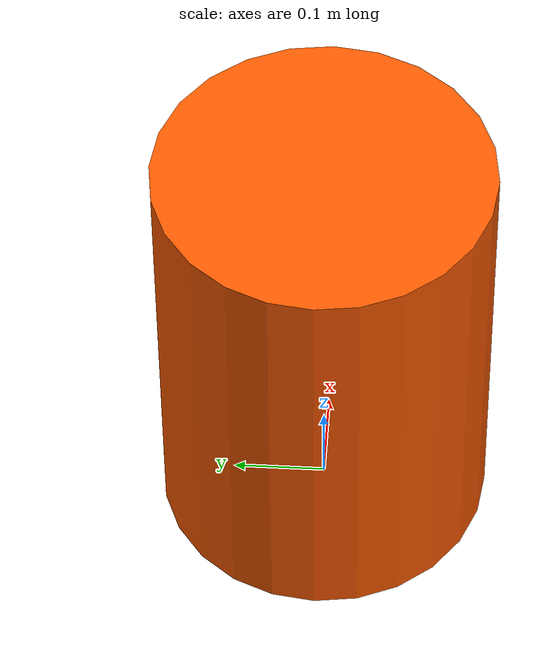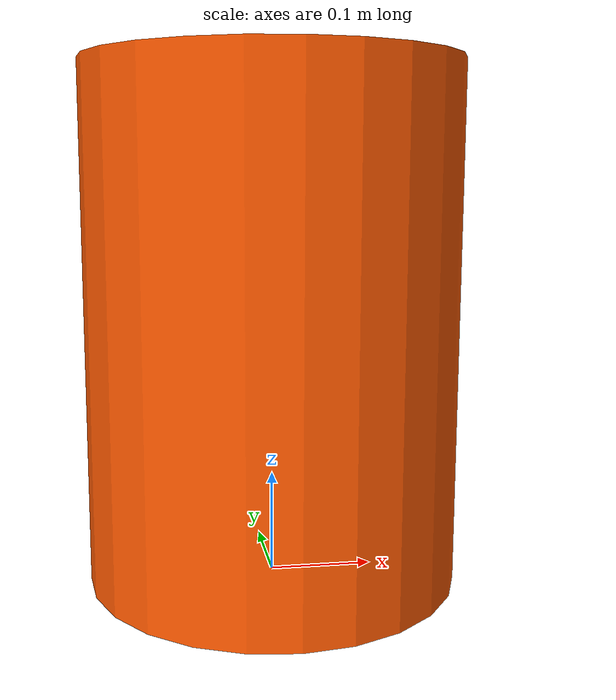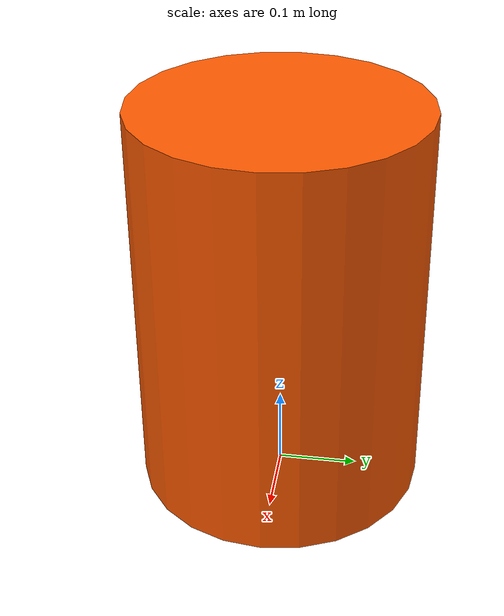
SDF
<?xml version="1.0"?>
<sdf version="1.7"><model name="cone"><static>false</static><link name="link"><pose>0 0 0.25 0 0 0</pose><inertial><mass>0.5</mass><inertia><ixx>0.01</ixx><iyy>0.01</iyy><izz>0.01</izz></inertia></inertial><collision name="collision"><geometry><cylinder><radius>0.18</radius><length>0.5</length></cylinder></geometry></collision><visual name="visual"><geometry><cylinder><radius>0.18</radius><length>0.5</length></cylinder></geometry><material><ambient>1 0.35 0 1</ambient><diffuse>1 0.35 0 1</diffuse></material></visual></link></model></sdf>
